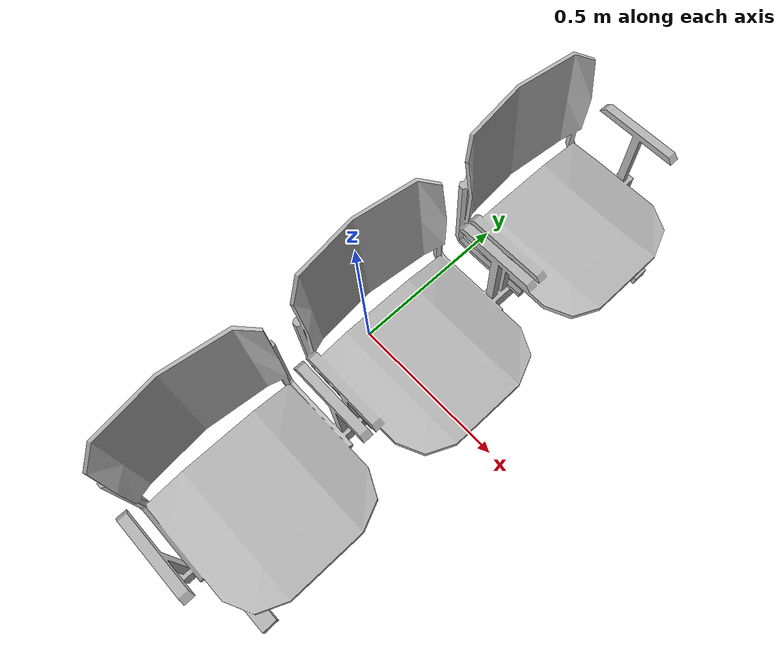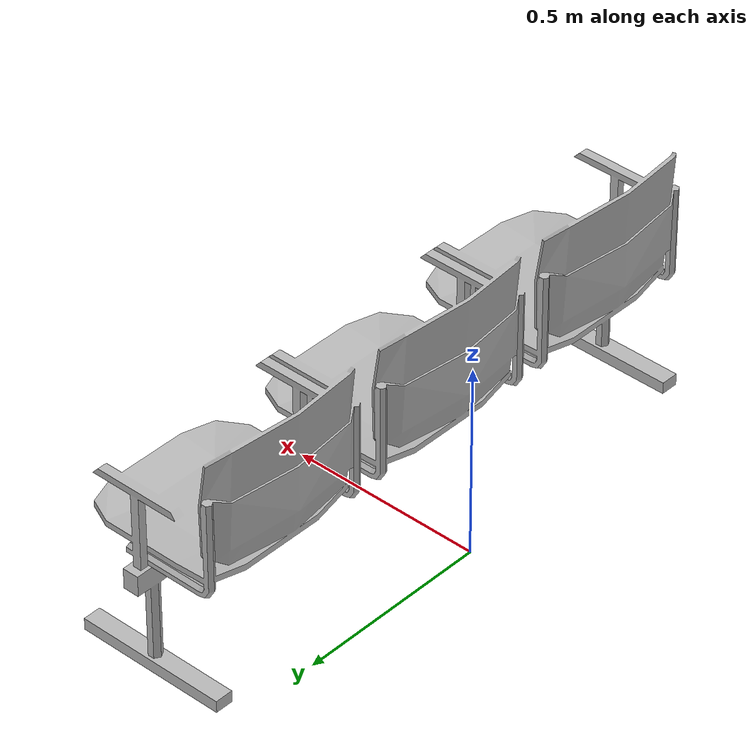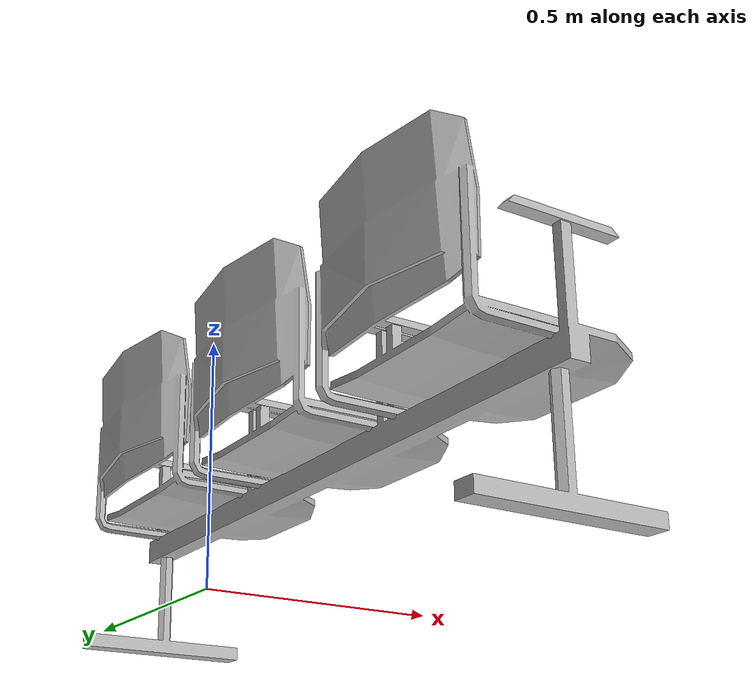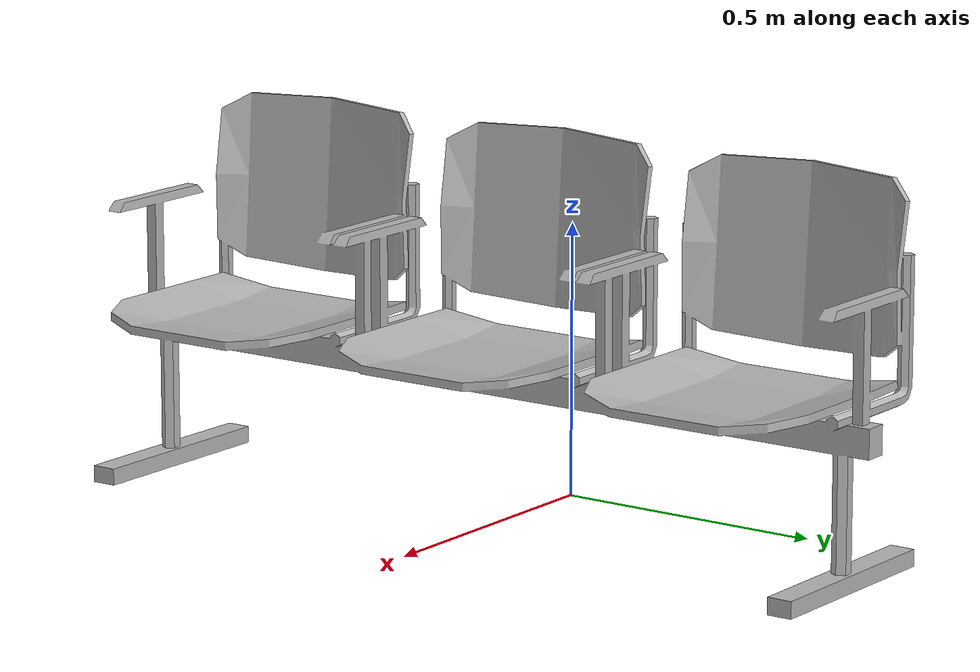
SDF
<?xml version="1.0" ?>
<sdf version="1.5">
  <model name="WhiteChipChair">
    <link name="link">
      <pose>0 0 0 0 0 0</pose>

        <visual name="visual">
          <geometry>
            <mesh><uri>model://WhiteChipChair/meshes/WhiteChipChair.obj</uri></mesh>
          </geometry>
        </visual>

        <collision name="collision">
          <geometry>
            <mesh><uri>model://WhiteChipChair/meshes/WhiteChipChair.obj</uri></mesh>
          </geometry>
        </collision>

    </link>
  </model>
</sdf>
